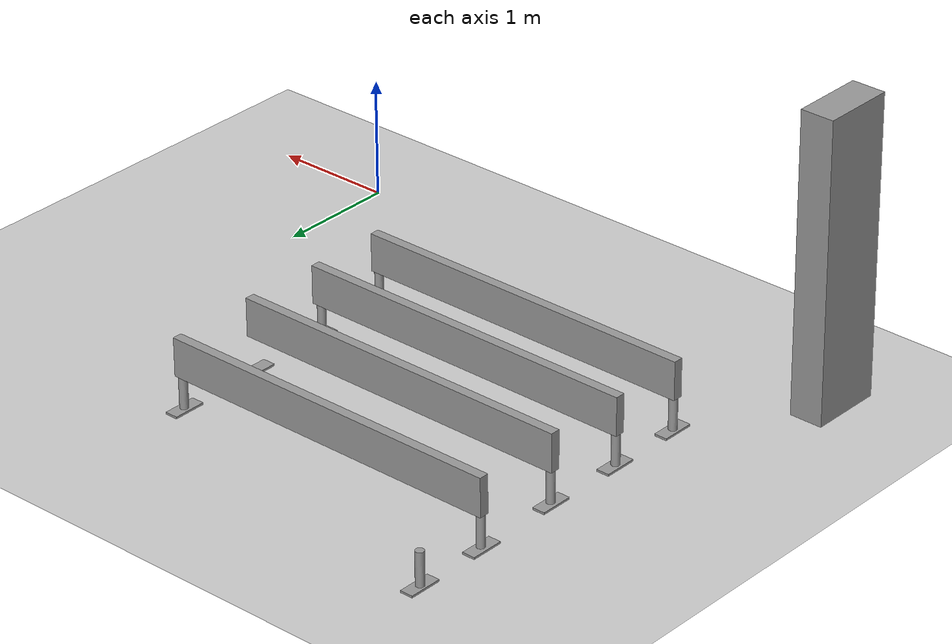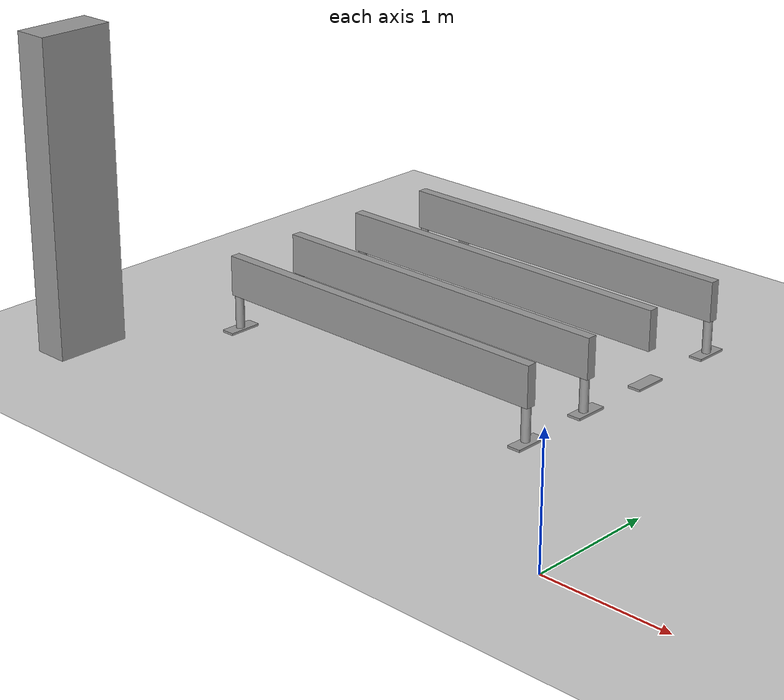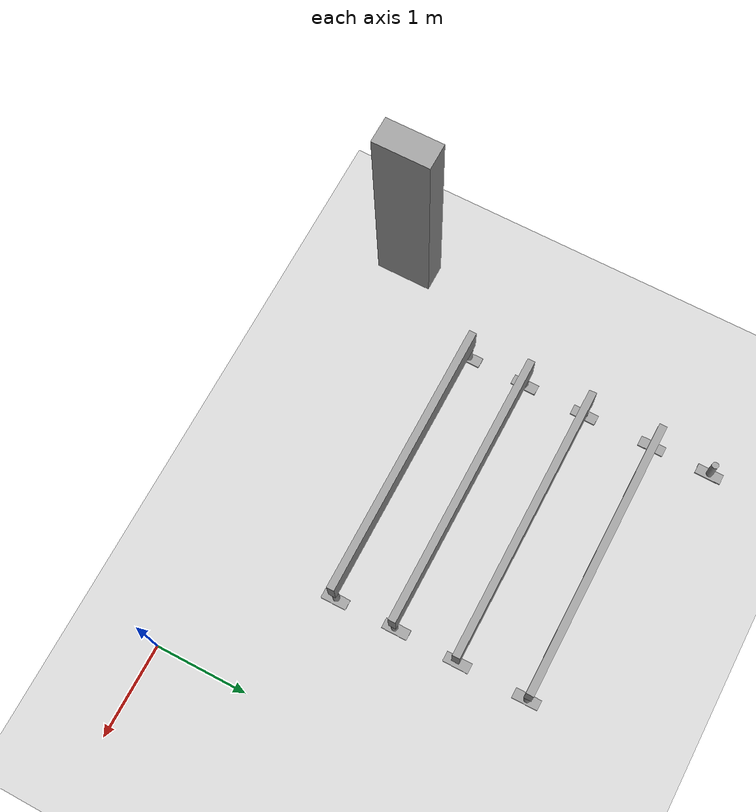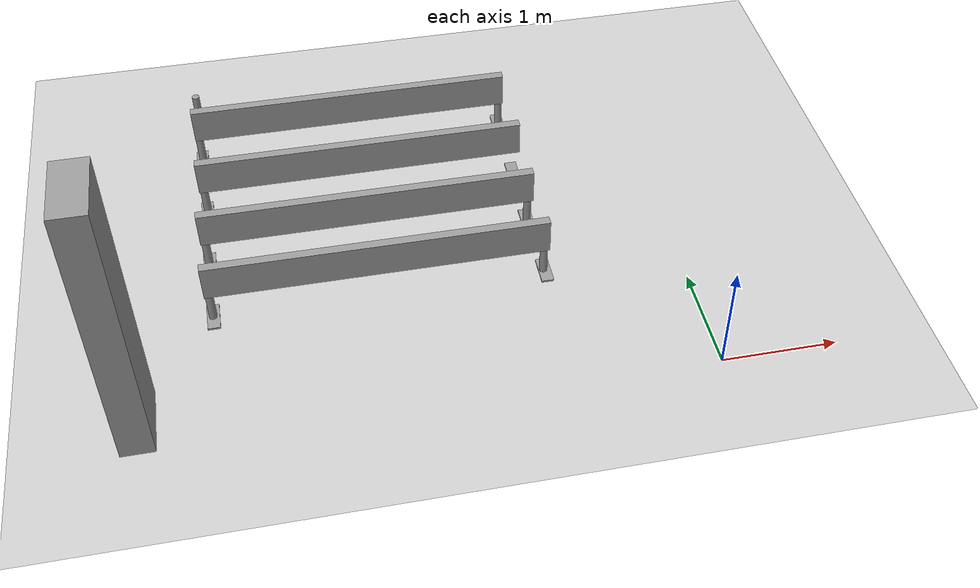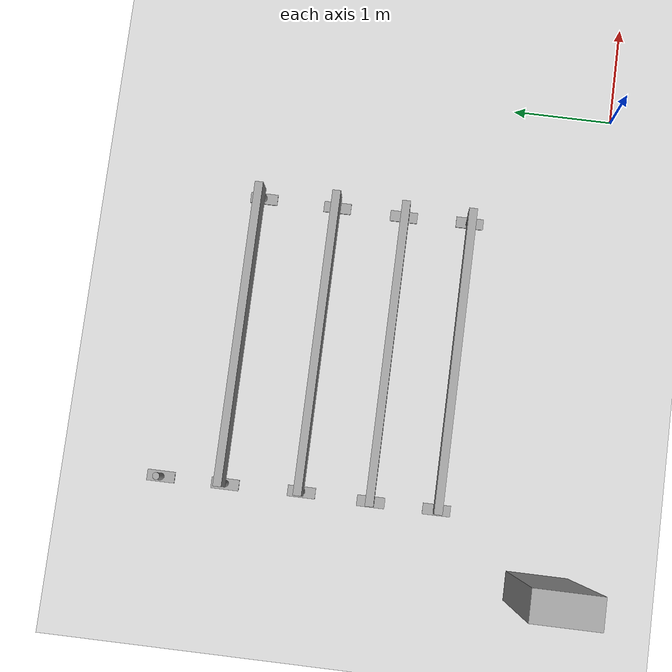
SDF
<sdf version="1.6">
 <world name="default">
  <model name="ground_plane">
   <static>1</static>
   <link name="link">
    <collision name="collision">
     <geometry><plane><normal>0 0 1</normal><size>100 100</size></plane></geometry>
     <surface><friction><ode><mu>100</mu><mu2>50</mu2></ode></friction></surface>
    </collision>
    <visual name="visual">
     <cast_shadows>0</cast_shadows>
     <geometry><plane><normal>0 0 1</normal><size>100 100</size></plane></geometry>
     <material>
      <script><uri>file://media/materials/scripts/gazebo.material</uri><name>Gazebo/Grey</name></script>
     </material>
    </visual>
   </link>
  </model>
  <model name="banchi">
   <link name="link_0_clone_18">
    <inertial>
     <mass>0.000785881</mass>
     <inertia>
      <ixx>5.11476e-06</ixx>
      <ixy>0</ixy>
      <ixz>0</ixz>
      <iyy>8.37345e-07</iyy>
      <iyz>0</iyz>
      <izz>5.8658e-06</izz>
     </inertia>
    </inertial>
    <pose>-1.73682 -5.78102 -0.495327 0 -0 0</pose>
    <visual name="visual">
     <geometry><box><size>0.110122 0.278282 0.025669</size></box></geometry>
     <material>
      <lighting>1</lighting>
      <script><uri>file://media/materials/scripts/gazebo.material</uri><name>Gazebo/Grey</name></script>
      <shader type="pixel"/>
     </material>
    </visual>
    <collision name="collision">
     <geometry><box><size>0.110122 0.278282 0.025669</size></box></geometry>
     <surface>
      <friction>
       <ode><mu>1</mu><mu2>1</mu2><fdir1>0 0 0</fdir1><slip1>0</slip1><slip2>0</slip2></ode>
       <torsional>
        <coefficient>1</coefficient>
        <patch_radius>0</patch_radius>
        <surface_radius>0</surface_radius>
        <use_patch_radius>1</use_patch_radius>
        <ode><slip>0</slip></ode>
       </torsional>
      </friction>
      <bounce><restitution_coefficient>0</restitution_coefficient><threshold>1e+06</threshold></bounce>
      <contact>
       <collide_without_contact>0</collide_without_contact>
       <collide_without_contact_bitmask>1</collide_without_contact_bitmask>
       <collide_bitmask>1</collide_bitmask>
       <ode>
        <soft_cfm>0</soft_cfm>
        <soft_erp>0.2</soft_erp>
        <kp>1e+13</kp>
        <kd>1</kd>
        <max_vel>0.01</max_vel>
        <min_depth>0</min_depth>
       </ode>
       <bullet>
        <split_impulse>1</split_impulse>
        <split_impulse_penetration_threshold>-0.01</split_impulse_penetration_threshold>
        <soft_cfm>0</soft_cfm>
        <soft_erp>0.2</soft_erp>
        <kp>1e+13</kp>
        <kd>1</kd>
       </bullet>
      </contact>
     </surface>
    </collision>
   </link>
   <link name="link_0_clone_19">
    <inertial>
     <mass>0.000785881</mass>
     <inertia>
      <ixx>5.11476e-06</ixx>
      <ixy>0</ixy>
      <ixz>0</ixz>
      <iyy>8.37345e-07</iyy>
      <iyz>0</iyz>
      <izz>5.8658e-06</izz>
     </inertia>
    </inertial>
    <pose>-1.74049 -6.54069 -0.495327 0 -0 0</pose>
    <visual name="visual">
     <geometry><box><size>0.110122 0.278282 0.025669</size></box></geometry>
     <material>
      <lighting>1</lighting>
      <script><uri>file://media/materials/scripts/gazebo.material</uri><name>Gazebo/Grey</name></script>
      <shader type="pixel"/>
     </material>
    </visual>
    <collision name="collision">
     <geometry><box><size>0.110122 0.278282 0.025669</size></box></geometry>
     <surface>
      <friction>
       <ode><mu>1</mu><mu2>1</mu2><fdir1>0 0 0</fdir1><slip1>0</slip1><slip2>0</slip2></ode>
       <torsional>
        <coefficient>1</coefficient>
        <patch_radius>0</patch_radius>
        <surface_radius>0</surface_radius>
        <use_patch_radius>1</use_patch_radius>
        <ode><slip>0</slip></ode>
       </torsional>
      </friction>
      <bounce><restitution_coefficient>0</restitution_coefficient><threshold>1e+06</threshold></bounce>
      <contact>
       <collide_without_contact>0</collide_without_contact>
       <collide_without_contact_bitmask>1</collide_without_contact_bitmask>
       <collide_bitmask>1</collide_bitmask>
       <ode>
        <soft_cfm>0</soft_cfm>
        <soft_erp>0.2</soft_erp>
        <kp>1e+13</kp>
        <kd>1</kd>
        <max_vel>0.01</max_vel>
        <min_depth>0</min_depth>
       </ode>
       <bullet>
        <split_impulse>1</split_impulse>
        <split_impulse_penetration_threshold>-0.01</split_impulse_penetration_threshold>
        <soft_cfm>0</soft_cfm>
        <soft_erp>0.2</soft_erp>
        <kp>1e+13</kp>
        <kd>1</kd>
       </bullet>
      </contact>
     </surface>
    </collision>
   </link>
   <link name="link_0_clone_20">
    <inertial>
     <mass>0.000785881</mass>
     <inertia>
      <ixx>5.11476e-06</ixx>
      <ixy>0</ixy>
      <ixz>0</ixz>
      <iyy>8.37345e-07</iyy>
      <iyz>0</iyz>
      <izz>5.8658e-06</izz>
     </inertia>
    </inertial>
    <pose>-1.75164 -7.22714 -0.495327 0 -0 0</pose>
    <visual name="visual">
     <geometry><box><size>0.110122 0.278282 0.025669</size></box></geometry>
     <material>
      <lighting>1</lighting>
      <script><uri>file://media/materials/scripts/gazebo.material</uri><name>Gazebo/Grey</name></script>
      <shader type="pixel"/>
     </material>
    </visual>
    <collision name="collision">
     <geometry><box><size>0.110122 0.278282 0.025669</size></box></geometry>
     <surface>
      <friction>
       <ode><mu>1</mu><mu2>1</mu2><fdir1>0 0 0</fdir1><slip1>0</slip1><slip2>0</slip2></ode>
       <torsional>
        <coefficient>1</coefficient>
        <patch_radius>0</patch_radius>
        <surface_radius>0</surface_radius>
        <use_patch_radius>1</use_patch_radius>
        <ode><slip>0</slip></ode>
       </torsional>
      </friction>
      <bounce><restitution_coefficient>0</restitution_coefficient><threshold>1e+06</threshold></bounce>
      <contact>
       <collide_without_contact>0</collide_without_contact>
       <collide_without_contact_bitmask>1</collide_without_contact_bitmask>
       <collide_bitmask>1</collide_bitmask>
       <ode>
        <soft_cfm>0</soft_cfm>
        <soft_erp>0.2</soft_erp>
        <kp>1e+13</kp>
        <kd>1</kd>
        <max_vel>0.01</max_vel>
        <min_depth>0</min_depth>
       </ode>
       <bullet>
        <split_impulse>1</split_impulse>
        <split_impulse_penetration_threshold>-0.01</split_impulse_penetration_threshold>
        <soft_cfm>0</soft_cfm>
        <soft_erp>0.2</soft_erp>
        <kp>1e+13</kp>
        <kd>1</kd>
       </bullet>
      </contact>
     </surface>
    </collision>
   </link>
   <link name="link_0_clone_21">
    <inertial>
     <mass>0.000785881</mass>
     <inertia>
      <ixx>5.11476e-06</ixx>
      <ixy>0</ixy>
      <ixz>0</ixz>
      <iyy>8.37345e-07</iyy>
      <iyz>0</iyz>
      <izz>5.8658e-06</izz>
     </inertia>
    </inertial>
    <pose>-1.73677 -7.90508 -0.495327 0 -0 0</pose>
    <visual name="visual">
     <geometry><box><size>0.110122 0.278282 0.025669</size></box></geometry>
     <material>
      <lighting>1</lighting>
      <script><uri>file://media/materials/scripts/gazebo.material</uri><name>Gazebo/Grey</name></script>
      <shader type="pixel"/>
     </material>
    </visual>
    <collision name="collision">
     <geometry><box><size>0.110122 0.278282 0.025669</size></box></geometry>
     <surface>
      <friction>
       <ode><mu>1</mu><mu2>1</mu2><fdir1>0 0 0</fdir1><slip1>0</slip1><slip2>0</slip2></ode>
       <torsional>
        <coefficient>1</coefficient>
        <patch_radius>0</patch_radius>
        <surface_radius>0</surface_radius>
        <use_patch_radius>1</use_patch_radius>
        <ode><slip>0</slip></ode>
       </torsional>
      </friction>
      <bounce><restitution_coefficient>0</restitution_coefficient><threshold>1e+06</threshold></bounce>
      <contact>
       <collide_without_contact>0</collide_without_contact>
       <collide_without_contact_bitmask>1</collide_without_contact_bitmask>
       <collide_bitmask>1</collide_bitmask>
       <ode>
        <soft_cfm>0</soft_cfm>
        <soft_erp>0.2</soft_erp>
        <kp>1e+13</kp>
        <kd>1</kd>
        <max_vel>0.01</max_vel>
        <min_depth>0</min_depth>
       </ode>
       <bullet>
        <split_impulse>1</split_impulse>
        <split_impulse_penetration_threshold>-0.01</split_impulse_penetration_threshold>
        <soft_cfm>0</soft_cfm>
        <soft_erp>0.2</soft_erp>
        <kp>1e+13</kp>
        <kd>1</kd>
       </bullet>
      </contact>
     </surface>
    </collision>
   </link>
   <link name="link_0_clone_22">
    <inertial>
     <mass>0.000785881</mass>
     <inertia>
      <ixx>5.11476e-06</ixx>
      <ixy>0</ixy>
      <ixz>0</ixz>
      <iyy>8.37345e-07</iyy>
      <iyz>0</iyz>
      <izz>5.8658e-06</izz>
     </inertia>
    </inertial>
    <pose>-4.66294 -7.90517 -0.495327 0 -0 0</pose>
    <visual name="visual">
     <geometry><box><size>0.110122 0.278282 0.025669</size></box></geometry>
     <material>
      <lighting>1</lighting>
      <script><uri>file://media/materials/scripts/gazebo.material</uri><name>Gazebo/Grey</name></script>
      <shader type="pixel"/>
     </material>
    </visual>
    <collision name="collision">
     <geometry><box><size>0.110122 0.278282 0.025669</size></box></geometry>
     <surface>
      <friction>
       <ode><mu>1</mu><mu2>1</mu2><fdir1>0 0 0</fdir1><slip1>0</slip1><slip2>0</slip2></ode>
       <torsional>
        <coefficient>1</coefficient>
        <patch_radius>0</patch_radius>
        <surface_radius>0</surface_radius>
        <use_patch_radius>1</use_patch_radius>
        <ode><slip>0</slip></ode>
       </torsional>
      </friction>
      <bounce><restitution_coefficient>0</restitution_coefficient><threshold>1e+06</threshold></bounce>
      <contact>
       <collide_without_contact>0</collide_without_contact>
       <collide_without_contact_bitmask>1</collide_without_contact_bitmask>
       <collide_bitmask>1</collide_bitmask>
       <ode>
        <soft_cfm>0</soft_cfm>
        <soft_erp>0.2</soft_erp>
        <kp>1e+13</kp>
        <kd>1</kd>
        <max_vel>0.01</max_vel>
        <min_depth>0</min_depth>
       </ode>
       <bullet>
        <split_impulse>1</split_impulse>
        <split_impulse_penetration_threshold>-0.01</split_impulse_penetration_threshold>
        <soft_cfm>0</soft_cfm>
        <soft_erp>0.2</soft_erp>
        <kp>1e+13</kp>
        <kd>1</kd>
       </bullet>
      </contact>
     </surface>
    </collision>
   </link>
   <link name="link_0_clone_23">
    <inertial>
     <mass>0.000785881</mass>
     <inertia>
      <ixx>5.11476e-06</ixx>
      <ixy>0</ixy>
      <ixz>0</ixz>
      <iyy>8.37345e-07</iyy>
      <iyz>0</iyz>
      <izz>5.8658e-06</izz>
     </inertia>
    </inertial>
    <pose>-4.66232 -7.24665 -0.495327 0 -0 0</pose>
    <visual name="visual">
     <geometry><box><size>0.110122 0.278282 0.025669</size></box></geometry>
     <material>
      <lighting>1</lighting>
      <script><uri>file://media/materials/scripts/gazebo.material</uri><name>Gazebo/Grey</name></script>
      <shader type="pixel"/>
     </material>
    </visual>
    <collision name="collision">
     <geometry><box><size>0.110122 0.278282 0.025669</size></box></geometry>
     <surface>
      <friction>
       <ode><mu>1</mu><mu2>1</mu2><fdir1>0 0 0</fdir1><slip1>0</slip1><slip2>0</slip2></ode>
       <torsional>
        <coefficient>1</coefficient>
        <patch_radius>0</patch_radius>
        <surface_radius>0</surface_radius>
        <use_patch_radius>1</use_patch_radius>
        <ode><slip>0</slip></ode>
       </torsional>
      </friction>
      <bounce><restitution_coefficient>0</restitution_coefficient><threshold>1e+06</threshold></bounce>
      <contact>
       <collide_without_contact>0</collide_without_contact>
       <collide_without_contact_bitmask>1</collide_without_contact_bitmask>
       <collide_bitmask>1</collide_bitmask>
       <ode>
        <soft_cfm>0</soft_cfm>
        <soft_erp>0.2</soft_erp>
        <kp>1e+13</kp>
        <kd>1</kd>
        <max_vel>0.01</max_vel>
        <min_depth>0</min_depth>
       </ode>
       <bullet>
        <split_impulse>1</split_impulse>
        <split_impulse_penetration_threshold>-0.01</split_impulse_penetration_threshold>
        <soft_cfm>0</soft_cfm>
        <soft_erp>0.2</soft_erp>
        <kp>1e+13</kp>
        <kd>1</kd>
       </bullet>
      </contact>
     </surface>
    </collision>
   </link>
   <link name="link_0_clone_24">
    <inertial>
     <mass>0.000785881</mass>
     <inertia>
      <ixx>5.11476e-06</ixx>
      <ixy>0</ixy>
      <ixz>0</ixz>
      <iyy>8.37345e-07</iyy>
      <iyz>0</iyz>
      <izz>5.8658e-06</izz>
     </inertia>
    </inertial>
    <pose>-4.64989 -6.54884 -0.495327 0 -0 0</pose>
    <visual name="visual">
     <geometry><box><size>0.110122 0.278282 0.025669</size></box></geometry>
     <material>
      <lighting>1</lighting>
      <script><uri>file://media/materials/scripts/gazebo.material</uri><name>Gazebo/Grey</name></script>
      <shader type="pixel"/>
     </material>
    </visual>
    <collision name="collision">
     <geometry><box><size>0.110122 0.278282 0.025669</size></box></geometry>
     <surface>
      <friction>
       <ode><mu>1</mu><mu2>1</mu2><fdir1>0 0 0</fdir1><slip1>0</slip1><slip2>0</slip2></ode>
       <torsional>
        <coefficient>1</coefficient>
        <patch_radius>0</patch_radius>
        <surface_radius>0</surface_radius>
        <use_patch_radius>1</use_patch_radius>
        <ode><slip>0</slip></ode>
       </torsional>
      </friction>
      <bounce><restitution_coefficient>0</restitution_coefficient><threshold>1e+06</threshold></bounce>
      <contact>
       <collide_without_contact>0</collide_without_contact>
       <collide_without_contact_bitmask>1</collide_without_contact_bitmask>
       <collide_bitmask>1</collide_bitmask>
       <ode>
        <soft_cfm>0</soft_cfm>
        <soft_erp>0.2</soft_erp>
        <kp>1e+13</kp>
        <kd>1</kd>
        <max_vel>0.01</max_vel>
        <min_depth>0</min_depth>
       </ode>
       <bullet>
        <split_impulse>1</split_impulse>
        <split_impulse_penetration_threshold>-0.01</split_impulse_penetration_threshold>
        <soft_cfm>0</soft_cfm>
        <soft_erp>0.2</soft_erp>
        <kp>1e+13</kp>
        <kd>1</kd>
       </bullet>
      </contact>
     </surface>
    </collision>
   </link>
   <link name="link_0_clone_25">
    <inertial>
     <mass>0.000785881</mass>
     <inertia>
      <ixx>5.11476e-06</ixx>
      <ixy>0</ixy>
      <ixz>0</ixz>
      <iyy>8.37345e-07</iyy>
      <iyz>0</iyz>
      <izz>5.8658e-06</izz>
     </inertia>
    </inertial>
    <pose>-4.66372 -5.78274 -0.495327 0 -0 0</pose>
    <visual name="visual">
     <geometry><box><size>0.110122 0.278282 0.025669</size></box></geometry>
     <material>
      <lighting>1</lighting>
      <script><uri>file://media/materials/scripts/gazebo.material</uri><name>Gazebo/Grey</name></script>
      <shader type="pixel"/>
     </material>
    </visual>
    <collision name="collision">
     <geometry><box><size>0.110122 0.278282 0.025669</size></box></geometry>
     <surface>
      <friction>
       <ode><mu>1</mu><mu2>1</mu2><fdir1>0 0 0</fdir1><slip1>0</slip1><slip2>0</slip2></ode>
       <torsional>
        <coefficient>1</coefficient>
        <patch_radius>0</patch_radius>
        <surface_radius>0</surface_radius>
        <use_patch_radius>1</use_patch_radius>
        <ode><slip>0</slip></ode>
       </torsional>
      </friction>
      <bounce><restitution_coefficient>0</restitution_coefficient><threshold>1e+06</threshold></bounce>
      <contact>
       <collide_without_contact>0</collide_without_contact>
       <collide_without_contact_bitmask>1</collide_without_contact_bitmask>
       <collide_bitmask>1</collide_bitmask>
       <ode>
        <soft_cfm>0</soft_cfm>
        <soft_erp>0.2</soft_erp>
        <kp>1e+13</kp>
        <kd>1</kd>
        <max_vel>0.01</max_vel>
        <min_depth>0</min_depth>
       </ode>
       <bullet>
        <split_impulse>1</split_impulse>
        <split_impulse_penetration_threshold>-0.01</split_impulse_penetration_threshold>
        <soft_cfm>0</soft_cfm>
        <soft_erp>0.2</soft_erp>
        <kp>1e+13</kp>
        <kd>1</kd>
       </bullet>
      </contact>
     </surface>
    </collision>
   </link>
   <link name="link_0_clone_26">
    <inertial>
     <mass>0.000785881</mass>
     <inertia>
      <ixx>5.11476e-06</ixx>
      <ixy>0</ixy>
      <ixz>0</ixz>
      <iyy>8.37345e-07</iyy>
      <iyz>0</iyz>
      <izz>5.8658e-06</izz>
     </inertia>
    </inertial>
    <pose>-4.66408 -5.13633 -0.495327 0 -0 0</pose>
    <visual name="visual">
     <geometry><box><size>0.110122 0.278282 0.025669</size></box></geometry>
     <material>
      <lighting>1</lighting>
      <script><uri>file://media/materials/scripts/gazebo.material</uri><name>Gazebo/Grey</name></script>
      <shader type="pixel"/>
     </material>
    </visual>
    <collision name="collision">
     <geometry><box><size>0.110122 0.278282 0.025669</size></box></geometry>
     <surface>
      <friction>
       <ode><mu>1</mu><mu2>1</mu2><fdir1>0 0 0</fdir1><slip1>0</slip1><slip2>0</slip2></ode>
       <torsional>
        <coefficient>1</coefficient>
        <patch_radius>0</patch_radius>
        <surface_radius>0</surface_radius>
        <use_patch_radius>1</use_patch_radius>
        <ode><slip>0</slip></ode>
       </torsional>
      </friction>
      <bounce><restitution_coefficient>0</restitution_coefficient><threshold>1e+06</threshold></bounce>
      <contact>
       <collide_without_contact>0</collide_without_contact>
       <collide_without_contact_bitmask>1</collide_without_contact_bitmask>
       <collide_bitmask>1</collide_bitmask>
       <ode>
        <soft_cfm>0</soft_cfm>
        <soft_erp>0.2</soft_erp>
        <kp>1e+13</kp>
        <kd>1</kd>
        <max_vel>0.01</max_vel>
        <min_depth>0</min_depth>
       </ode>
       <bullet>
        <split_impulse>1</split_impulse>
        <split_impulse_penetration_threshold>-0.01</split_impulse_penetration_threshold>
        <soft_cfm>0</soft_cfm>
        <soft_erp>0.2</soft_erp>
        <kp>1e+13</kp>
        <kd>1</kd>
       </bullet>
      </contact>
     </surface>
    </collision>
   </link>
   <link name="link_4">
    <pose>-5.31479 -8.96277 0.64457 0 -0 0</pose>
    <inertial>
     <mass>2.75337</mass>
     <inertia><ixx>1.96891</ixx><ixy>0</ixy><ixz>0</ixz><iyy>1.96891</iyy><iyz>0</iyz><izz>0.458897</izz></inertia>
    </inertial>
    <visual name="visual">
     <geometry><box><size>0.285 0.61 2.75337</size></box></geometry>
     <material>
      <lighting>1</lighting>
      <script><uri>file://media/materials/scripts/gazebo.material</uri><name>Gazebo/Grey</name></script>
      <ambient>0.3 0.3 0.3 1</ambient>
      <diffuse>0.7 0.7 0.7 1</diffuse>
      <specular>0.01 0.01 0.01 1</specular>
      <emissive>0 0 0 1</emissive>
      <shader type="vertex"><normal_map>__default__</normal_map></shader>
     </material>
    </visual>
    <collision name="collision">
     <geometry><box><size>0.285 0.61 2.75337</size></box></geometry>
     <surface>
      <friction>
       <ode><mu>1</mu><mu2>1</mu2><fdir1>0 0 0</fdir1><slip1>0</slip1><slip2>0</slip2></ode>
       <torsional>
        <coefficient>1</coefficient>
        <patch_radius>0</patch_radius>
        <surface_radius>0</surface_radius>
        <use_patch_radius>1</use_patch_radius>
        <ode><slip>0</slip></ode>
       </torsional>
      </friction>
      <bounce><restitution_coefficient>0</restitution_coefficient><threshold>1e+06</threshold></bounce>
      <contact>
       <collide_without_contact>0</collide_without_contact>
       <collide_without_contact_bitmask>1</collide_without_contact_bitmask>
       <collide_bitmask>1</collide_bitmask>
       <ode>
        <soft_cfm>0</soft_cfm>
        <soft_erp>0.2</soft_erp>
        <kp>1e+13</kp>
        <kd>1</kd>
        <max_vel>0.01</max_vel>
        <min_depth>0</min_depth>
       </ode>
       <bullet>
        <split_impulse>1</split_impulse>
        <split_impulse_penetration_threshold>-0.01</split_impulse_penetration_threshold>
        <soft_cfm>0</soft_cfm>
        <soft_erp>0.2</soft_erp>
        <kp>1e+13</kp>
        <kd>1</kd>
       </bullet>
      </contact>
     </surface>
    </collision>
   </link>
   <link name="link_6_clone_clone_4_clone_1">
    <pose>-3.1939 -5.77823 -0.050035 0 -0 0</pose>
    <inertial>
     <mass>0.0822689</mass>
     <inertia>
      <ixx>0.00690216</ixx>
      <ixy>0</ixy>
      <ixz>0</ixz>
      <iyy>0.0137115</iyy>
      <iyz>0</iyz>
      <izz>0.00690216</izz>
     </inertia>
    </inertial>
    <visual name="visual">
     <geometry><box><size>3 0.082269 0.32559</size></box></geometry>
     <material>
      <lighting>1</lighting>
      <script><uri>file://media/materials/scripts/gazebo.material</uri><name>Gazebo/Grey</name></script>
      <ambient>0.3 0.3 0.3 1</ambient>
      <diffuse>0.7 0.7 0.7 1</diffuse>
      <specular>0.01 0.01 0.01 1</specular>
      <emissive>0 0 0 1</emissive>
      <shader type="vertex"><normal_map>__default__</normal_map></shader>
     </material>
    </visual>
    <collision name="collision">
     <geometry><box><size>3 0.082269 0.32559</size></box></geometry>
     <surface>
      <friction>
       <ode><mu>1</mu><mu2>1</mu2><fdir1>0 0 0</fdir1><slip1>0</slip1><slip2>0</slip2></ode>
       <torsional>
        <coefficient>1</coefficient>
        <patch_radius>0</patch_radius>
        <surface_radius>0</surface_radius>
        <use_patch_radius>1</use_patch_radius>
        <ode><slip>0</slip></ode>
       </torsional>
      </friction>
      <bounce><restitution_coefficient>0</restitution_coefficient><threshold>1e+06</threshold></bounce>
      <contact>
       <collide_without_contact>0</collide_without_contact>
       <collide_without_contact_bitmask>1</collide_without_contact_bitmask>
       <collide_bitmask>1</collide_bitmask>
       <ode>
        <soft_cfm>0</soft_cfm>
        <soft_erp>0.2</soft_erp>
        <kp>1e+13</kp>
        <kd>1</kd>
        <max_vel>0.01</max_vel>
        <min_depth>0</min_depth>
       </ode>
       <bullet>
        <split_impulse>1</split_impulse>
        <split_impulse_penetration_threshold>-0.01</split_impulse_penetration_threshold>
        <soft_cfm>0</soft_cfm>
        <soft_erp>0.2</soft_erp>
        <kp>1e+13</kp>
        <kd>1</kd>
       </bullet>
      </contact>
     </surface>
    </collision>
   </link>
   <link name="link_6_clone_clone_4_clone_2">
    <pose>-3.18814 -6.54898 -0.044202 0 -0 0</pose>
    <inertial>
     <mass>0.0822689</mass>
     <inertia>
      <ixx>0.00690216</ixx>
      <ixy>0</ixy>
      <ixz>0</ixz>
      <iyy>0.0137115</iyy>
      <iyz>0</iyz>
      <izz>0.00690216</izz>
     </inertia>
    </inertial>
    <visual name="visual">
     <geometry><box><size>3 0.082269 0.32559</size></box></geometry>
     <material>
      <lighting>1</lighting>
      <script><uri>file://media/materials/scripts/gazebo.material</uri><name>Gazebo/Grey</name></script>
      <ambient>0.3 0.3 0.3 1</ambient>
      <diffuse>0.7 0.7 0.7 1</diffuse>
      <specular>0.01 0.01 0.01 1</specular>
      <emissive>0 0 0 1</emissive>
      <shader type="vertex"><normal_map>__default__</normal_map></shader>
     </material>
    </visual>
    <collision name="collision">
     <geometry><box><size>3 0.082269 0.32559</size></box></geometry>
     <surface>
      <friction>
       <ode><mu>1</mu><mu2>1</mu2><fdir1>0 0 0</fdir1><slip1>0</slip1><slip2>0</slip2></ode>
       <torsional>
        <coefficient>1</coefficient>
        <patch_radius>0</patch_radius>
        <surface_radius>0</surface_radius>
        <use_patch_radius>1</use_patch_radius>
        <ode><slip>0</slip></ode>
       </torsional>
      </friction>
      <bounce><restitution_coefficient>0</restitution_coefficient><threshold>1e+06</threshold></bounce>
      <contact>
       <collide_without_contact>0</collide_without_contact>
       <collide_without_contact_bitmask>1</collide_without_contact_bitmask>
       <collide_bitmask>1</collide_bitmask>
       <ode>
        <soft_cfm>0</soft_cfm>
        <soft_erp>0.2</soft_erp>
        <kp>1e+13</kp>
        <kd>1</kd>
        <max_vel>0.01</max_vel>
        <min_depth>0</min_depth>
       </ode>
       <bullet>
        <split_impulse>1</split_impulse>
        <split_impulse_penetration_threshold>-0.01</split_impulse_penetration_threshold>
        <soft_cfm>0</soft_cfm>
        <soft_erp>0.2</soft_erp>
        <kp>1e+13</kp>
        <kd>1</kd>
       </bullet>
      </contact>
     </surface>
    </collision>
   </link>
   <link name="link_6_clone_clone_4_clone_3">
    <pose>-3.20665 -7.24405 -0.050379 0 -0 0</pose>
    <inertial>
     <mass>0.0822689</mass>
     <inertia>
      <ixx>0.00690216</ixx>
      <ixy>0</ixy>
      <ixz>0</ixz>
      <iyy>0.0137115</iyy>
      <iyz>0</iyz>
      <izz>0.00690216</izz>
     </inertia>
    </inertial>
    <visual name="visual">
     <geometry><box><size>3 0.082269 0.32559</size></box></geometry>
     <material>
      <lighting>1</lighting>
      <script><uri>file://media/materials/scripts/gazebo.material</uri><name>Gazebo/Grey</name></script>
      <ambient>0.3 0.3 0.3 1</ambient>
      <diffuse>0.7 0.7 0.7 1</diffuse>
      <specular>0.01 0.01 0.01 1</specular>
      <emissive>0 0 0 1</emissive>
      <shader type="vertex"><normal_map>__default__</normal_map></shader>
     </material>
    </visual>
    <collision name="collision">
     <geometry><box><size>3 0.082269 0.32559</size></box></geometry>
     <surface>
      <friction>
       <ode><mu>1</mu><mu2>1</mu2><fdir1>0 0 0</fdir1><slip1>0</slip1><slip2>0</slip2></ode>
       <torsional>
        <coefficient>1</coefficient>
        <patch_radius>0</patch_radius>
        <surface_radius>0</surface_radius>
        <use_patch_radius>1</use_patch_radius>
        <ode><slip>0</slip></ode>
       </torsional>
      </friction>
      <bounce><restitution_coefficient>0</restitution_coefficient><threshold>1e+06</threshold></bounce>
      <contact>
       <collide_without_contact>0</collide_without_contact>
       <collide_without_contact_bitmask>1</collide_without_contact_bitmask>
       <collide_bitmask>1</collide_bitmask>
       <ode>
        <soft_cfm>0</soft_cfm>
        <soft_erp>0.2</soft_erp>
        <kp>1e+13</kp>
        <kd>1</kd>
        <max_vel>0.01</max_vel>
        <min_depth>0</min_depth>
       </ode>
       <bullet>
        <split_impulse>1</split_impulse>
        <split_impulse_penetration_threshold>-0.01</split_impulse_penetration_threshold>
        <soft_cfm>0</soft_cfm>
        <soft_erp>0.2</soft_erp>
        <kp>1e+13</kp>
        <kd>1</kd>
       </bullet>
      </contact>
     </surface>
    </collision>
   </link>
   <link name="link_6_clone_clone_4_clone_4">
    <pose>-3.20427 -7.9071 -0.047663 0 -0 0</pose>
    <inertial>
     <mass>0.0297622</mass>
     <inertia>
      <ixx>0.00034139</ixx>
      <ixy>0</ixy>
      <ixz>0</ixz>
      <iyy>0.00280479</iyy>
      <iyz>0</iyz>
      <izz>0.00249698</izz>
     </inertia>
    </inertial>
    <visual name="visual">
     <geometry><box><size>3 0.082269 0.32559</size></box></geometry>
     <material>
      <lighting>1</lighting>
      <script><uri>file://media/materials/scripts/gazebo.material</uri><name>Gazebo/Grey</name></script>
      <ambient>0.3 0.3 0.3 1</ambient>
      <diffuse>0.7 0.7 0.7 1</diffuse>
      <specular>0.01 0.01 0.01 1</specular>
      <emissive>0 0 0 1</emissive>
      <shader type="vertex"><normal_map>__default__</normal_map></shader>
     </material>
    </visual>
    <collision name="collision">
     <geometry><box><size>3 0.082269 0.32559</size></box></geometry>
     <surface>
      <friction>
       <ode><mu>1</mu><mu2>1</mu2><fdir1>0 0 0</fdir1><slip1>0</slip1><slip2>0</slip2></ode>
       <torsional>
        <coefficient>1</coefficient>
        <patch_radius>0</patch_radius>
        <surface_radius>0</surface_radius>
        <use_patch_radius>1</use_patch_radius>
        <ode><slip>0</slip></ode>
       </torsional>
      </friction>
      <bounce><restitution_coefficient>0</restitution_coefficient><threshold>1e+06</threshold></bounce>
      <contact>
       <collide_without_contact>0</collide_without_contact>
       <collide_without_contact_bitmask>1</collide_without_contact_bitmask>
       <collide_bitmask>1</collide_bitmask>
       <ode>
        <soft_cfm>0</soft_cfm>
        <soft_erp>0.2</soft_erp>
        <kp>1e+13</kp>
        <kd>1</kd>
        <max_vel>0.01</max_vel>
        <min_depth>0</min_depth>
       </ode>
       <bullet>
        <split_impulse>1</split_impulse>
        <split_impulse_penetration_threshold>-0.01</split_impulse_penetration_threshold>
        <soft_cfm>0</soft_cfm>
        <soft_erp>0.2</soft_erp>
        <kp>1e+13</kp>
        <kd>1</kd>
       </bullet>
      </contact>
     </surface>
    </collision>
   </link>
   <link name="link_7">
    <pose>-1.74905 -7.90187 -0.350199 0 -0 0</pose>
    <inertial>
     <mass>0.00501927</mass>
     <inertia>
      <ixx>0.000419846</ixx>
      <ixy>0</ixy>
      <ixz>0</ixz>
      <iyy>0.000419846</iyy>
      <iyz>0</iyz>
      <izz>3.14914e-06</izz>
     </inertia>
    </inertial>
    <visual name="visual">
     <geometry><cylinder><radius>0.0354247</radius><length>0.3</length></cylinder></geometry>
     <material>
      <lighting>1</lighting>
      <script><uri>file://media/materials/scripts/gazebo.material</uri><name>Gazebo/Grey</name></script>
      <ambient>0.3 0.3 0.3 1</ambient>
      <diffuse>0.7 0.7 0.7 1</diffuse>
      <specular>0.01 0.01 0.01 1</specular>
      <emissive>0 0 0 1</emissive>
      <shader type="vertex"><normal_map>__default__</normal_map></shader>
     </material>
    </visual>
    <collision name="collision">
     <geometry><cylinder><radius>0.035425</radius><length>0.3</length></cylinder></geometry>
     <surface>
      <friction>
       <ode><mu>1</mu><mu2>1</mu2><fdir1>0 0 0</fdir1><slip1>0</slip1><slip2>0</slip2></ode>
       <torsional>
        <coefficient>1</coefficient>
        <patch_radius>0</patch_radius>
        <surface_radius>0</surface_radius>
        <use_patch_radius>1</use_patch_radius>
        <ode><slip>0</slip></ode>
       </torsional>
      </friction>
      <bounce><restitution_coefficient>0</restitution_coefficient><threshold>1e+06</threshold></bounce>
      <contact>
       <collide_without_contact>0</collide_without_contact>
       <collide_without_contact_bitmask>1</collide_without_contact_bitmask>
       <collide_bitmask>1</collide_bitmask>
       <ode>
        <soft_cfm>0</soft_cfm>
        <soft_erp>0.2</soft_erp>
        <kp>1e+13</kp>
        <kd>1</kd>
        <max_vel>0.01</max_vel>
        <min_depth>0</min_depth>
       </ode>
       <bullet>
        <split_impulse>1</split_impulse>
        <split_impulse_penetration_threshold>-0.01</split_impulse_penetration_threshold>
        <soft_cfm>0</soft_cfm>
        <soft_erp>0.2</soft_erp>
        <kp>1e+13</kp>
        <kd>1</kd>
       </bullet>
      </contact>
     </surface>
    </collision>
   </link>
   <link name="link_7_clone">
    <pose>-4.66394 -7.90686 -0.344432 0 -0 0</pose>
    <inertial>
     <mass>0.00501927</mass>
     <inertia>
      <ixx>0.000419846</ixx>
      <ixy>0</ixy>
      <ixz>0</ixz>
      <iyy>0.000419846</iyy>
      <iyz>0</iyz>
      <izz>3.14914e-06</izz>
     </inertia>
    </inertial>
    <visual name="visual">
     <geometry><cylinder><radius>0.0354247</radius><length>0.3</length></cylinder></geometry>
     <material>
      <lighting>1</lighting>
      <script><uri>file://media/materials/scripts/gazebo.material</uri><name>Gazebo/Grey</name></script>
      <ambient>0.3 0.3 0.3 1</ambient>
      <diffuse>0.7 0.7 0.7 1</diffuse>
      <specular>0.01 0.01 0.01 1</specular>
      <emissive>0 0 0 1</emissive>
      <shader type="vertex"><normal_map>__default__</normal_map></shader>
     </material>
    </visual>
    <collision name="collision">
     <geometry><cylinder><radius>0.035425</radius><length>0.3</length></cylinder></geometry>
     <surface>
      <friction>
       <ode><mu>1</mu><mu2>1</mu2><fdir1>0 0 0</fdir1><slip1>0</slip1><slip2>0</slip2></ode>
       <torsional>
        <coefficient>1</coefficient>
        <patch_radius>0</patch_radius>
        <surface_radius>0</surface_radius>
        <use_patch_radius>1</use_patch_radius>
        <ode><slip>0</slip></ode>
       </torsional>
      </friction>
      <bounce><restitution_coefficient>0</restitution_coefficient><threshold>1e+06</threshold></bounce>
      <contact>
       <collide_without_contact>0</collide_without_contact>
       <collide_without_contact_bitmask>1</collide_without_contact_bitmask>
       <collide_bitmask>1</collide_bitmask>
       <ode>
        <soft_cfm>0</soft_cfm>
        <soft_erp>0.2</soft_erp>
        <kp>1e+13</kp>
        <kd>1</kd>
        <max_vel>0.01</max_vel>
        <min_depth>0</min_depth>
       </ode>
       <bullet>
        <split_impulse>1</split_impulse>
        <split_impulse_penetration_threshold>-0.01</split_impulse_penetration_threshold>
        <soft_cfm>0</soft_cfm>
        <soft_erp>0.2</soft_erp>
        <kp>1e+13</kp>
        <kd>1</kd>
       </bullet>
      </contact>
     </surface>
    </collision>
   </link>
   <link name="link_7_clone_0">
    <pose>-1.75725 -7.24772 -0.354319 0 -0 0</pose>
    <inertial>
     <mass>0.00501927</mass>
     <inertia>
      <ixx>0.000419846</ixx>
      <ixy>0</ixy>
      <ixz>0</ixz>
      <iyy>0.000419846</iyy>
      <iyz>0</iyz>
      <izz>3.14914e-06</izz>
     </inertia>
    </inertial>
    <visual name="visual">
     <geometry><cylinder><radius>0.0354247</radius><length>0.3</length></cylinder></geometry>
     <material>
      <lighting>1</lighting>
      <script><uri>file://media/materials/scripts/gazebo.material</uri><name>Gazebo/Grey</name></script>
      <ambient>0.3 0.3 0.3 1</ambient>
      <diffuse>0.7 0.7 0.7 1</diffuse>
      <specular>0.01 0.01 0.01 1</specular>
      <emissive>0 0 0 1</emissive>
      <shader type="vertex"><normal_map>__default__</normal_map></shader>
     </material>
    </visual>
    <collision name="collision">
     <geometry><cylinder><radius>0.035425</radius><length>0.3</length></cylinder></geometry>
     <surface>
      <friction>
       <ode><mu>1</mu><mu2>1</mu2><fdir1>0 0 0</fdir1><slip1>0</slip1><slip2>0</slip2></ode>
       <torsional>
        <coefficient>1</coefficient>
        <patch_radius>0</patch_radius>
        <surface_radius>0</surface_radius>
        <use_patch_radius>1</use_patch_radius>
        <ode><slip>0</slip></ode>
       </torsional>
      </friction>
      <bounce><restitution_coefficient>0</restitution_coefficient><threshold>1e+06</threshold></bounce>
      <contact>
       <collide_without_contact>0</collide_without_contact>
       <collide_without_contact_bitmask>1</collide_without_contact_bitmask>
       <collide_bitmask>1</collide_bitmask>
       <ode>
        <soft_cfm>0</soft_cfm>
        <soft_erp>0.2</soft_erp>
        <kp>1e+13</kp>
        <kd>1</kd>
        <max_vel>0.01</max_vel>
        <min_depth>0</min_depth>
       </ode>
       <bullet>
        <split_impulse>1</split_impulse>
        <split_impulse_penetration_threshold>-0.01</split_impulse_penetration_threshold>
        <soft_cfm>0</soft_cfm>
        <soft_erp>0.2</soft_erp>
        <kp>1e+13</kp>
        <kd>1</kd>
       </bullet>
      </contact>
     </surface>
    </collision>
   </link>
   <link name="link_7_clone_1">
    <pose>-4.6651 -7.24899 -0.343212 0 -0 0</pose>
    <inertial>
     <mass>0.00501927</mass>
     <inertia>
      <ixx>0.000419846</ixx>
      <ixy>0</ixy>
      <ixz>0</ixz>
      <iyy>0.000419846</iyy>
      <iyz>0</iyz>
      <izz>3.14914e-06</izz>
     </inertia>
    </inertial>
    <visual name="visual">
     <geometry><cylinder><radius>0.0354247</radius><length>0.3</length></cylinder></geometry>
     <material>
      <lighting>1</lighting>
      <script><uri>file://media/materials/scripts/gazebo.material</uri><name>Gazebo/Grey</name></script>
      <ambient>0.3 0.3 0.3 1</ambient>
      <diffuse>0.7 0.7 0.7 1</diffuse>
      <specular>0.01 0.01 0.01 1</specular>
      <emissive>0 0 0 1</emissive>
      <shader type="vertex"><normal_map>__default__</normal_map></shader>
     </material>
    </visual>
    <collision name="collision">
     <geometry><cylinder><radius>0.035425</radius><length>0.3</length></cylinder></geometry>
     <surface>
      <friction>
       <ode><mu>1</mu><mu2>1</mu2><fdir1>0 0 0</fdir1><slip1>0</slip1><slip2>0</slip2></ode>
       <torsional>
        <coefficient>1</coefficient>
        <patch_radius>0</patch_radius>
        <surface_radius>0</surface_radius>
        <use_patch_radius>1</use_patch_radius>
        <ode><slip>0</slip></ode>
       </torsional>
      </friction>
      <bounce><restitution_coefficient>0</restitution_coefficient><threshold>1e+06</threshold></bounce>
      <contact>
       <collide_without_contact>0</collide_without_contact>
       <collide_without_contact_bitmask>1</collide_without_contact_bitmask>
       <collide_bitmask>1</collide_bitmask>
       <ode>
        <soft_cfm>0</soft_cfm>
        <soft_erp>0.2</soft_erp>
        <kp>1e+13</kp>
        <kd>1</kd>
        <max_vel>0.01</max_vel>
        <min_depth>0</min_depth>
       </ode>
       <bullet>
        <split_impulse>1</split_impulse>
        <split_impulse_penetration_threshold>-0.01</split_impulse_penetration_threshold>
        <soft_cfm>0</soft_cfm>
        <soft_erp>0.2</soft_erp>
        <kp>1e+13</kp>
        <kd>1</kd>
       </bullet>
      </contact>
     </surface>
    </collision>
   </link>
   <link name="link_7_clone_1_clone">
    <pose>-4.64537 -6.55011 -0.345478 0 -0 0</pose>
    <inertial>
     <mass>0.00501927</mass>
     <inertia>
      <ixx>0.000419846</ixx>
      <ixy>0</ixy>
      <ixz>0</ixz>
      <iyy>0.000419846</iyy>
      <iyz>0</iyz>
      <izz>3.14914e-06</izz>
     </inertia>
    </inertial>
    <visual name="visual">
     <geometry><cylinder><radius>0.0354247</radius><length>0.3</length></cylinder></geometry>
     <material>
      <lighting>1</lighting>
      <script><uri>file://media/materials/scripts/gazebo.material</uri><name>Gazebo/Grey</name></script>
      <ambient>0.3 0.3 0.3 1</ambient>
      <diffuse>0.7 0.7 0.7 1</diffuse>
      <specular>0.01 0.01 0.01 1</specular>
      <emissive>0 0 0 1</emissive>
      <shader type="vertex"><normal_map>__default__</normal_map></shader>
     </material>
    </visual>
    <collision name="collision">
     <geometry><cylinder><radius>0.035425</radius><length>0.3</length></cylinder></geometry>
     <surface>
      <friction>
       <ode><mu>1</mu><mu2>1</mu2><fdir1>0 0 0</fdir1><slip1>0</slip1><slip2>0</slip2></ode>
       <torsional>
        <coefficient>1</coefficient>
        <patch_radius>0</patch_radius>
        <surface_radius>0</surface_radius>
        <use_patch_radius>1</use_patch_radius>
        <ode><slip>0</slip></ode>
       </torsional>
      </friction>
      <bounce><restitution_coefficient>0</restitution_coefficient><threshold>1e+06</threshold></bounce>
      <contact>
       <collide_without_contact>0</collide_without_contact>
       <collide_without_contact_bitmask>1</collide_without_contact_bitmask>
       <collide_bitmask>1</collide_bitmask>
       <ode>
        <soft_cfm>0</soft_cfm>
        <soft_erp>0.2</soft_erp>
        <kp>1e+13</kp>
        <kd>1</kd>
        <max_vel>0.01</max_vel>
        <min_depth>0</min_depth>
       </ode>
       <bullet>
        <split_impulse>1</split_impulse>
        <split_impulse_penetration_threshold>-0.01</split_impulse_penetration_threshold>
        <soft_cfm>0</soft_cfm>
        <soft_erp>0.2</soft_erp>
        <kp>1e+13</kp>
        <kd>1</kd>
       </bullet>
      </contact>
     </surface>
    </collision>
   </link>
   <link name="link_7_clone_1_clone_clone">
    <pose>-4.65774 -5.78199 -0.348304 0 -0 0</pose>
    <inertial>
     <mass>0.00501927</mass>
     <inertia>
      <ixx>0.000419846</ixx>
      <ixy>0</ixy>
      <ixz>0</ixz>
      <iyy>0.000419846</iyy>
      <iyz>0</iyz>
      <izz>3.14914e-06</izz>
     </inertia>
    </inertial>
    <visual name="visual">
     <geometry><cylinder><radius>0.0354247</radius><length>0.3</length></cylinder></geometry>
     <material>
      <lighting>1</lighting>
      <script><uri>file://media/materials/scripts/gazebo.material</uri><name>Gazebo/Grey</name></script>
      <ambient>0.3 0.3 0.3 1</ambient>
      <diffuse>0.7 0.7 0.7 1</diffuse>
      <specular>0.01 0.01 0.01 1</specular>
      <emissive>0 0 0 1</emissive>
      <shader type="vertex"><normal_map>__default__</normal_map></shader>
     </material>
    </visual>
    <collision name="collision">
     <geometry><cylinder><radius>0.035425</radius><length>0.3</length></cylinder></geometry>
     <surface>
      <friction>
       <ode><mu>1</mu><mu2>1</mu2><fdir1>0 0 0</fdir1><slip1>0</slip1><slip2>0</slip2></ode>
       <torsional>
        <coefficient>1</coefficient>
        <patch_radius>0</patch_radius>
        <surface_radius>0</surface_radius>
        <use_patch_radius>1</use_patch_radius>
        <ode><slip>0</slip></ode>
       </torsional>
      </friction>
      <bounce><restitution_coefficient>0</restitution_coefficient><threshold>1e+06</threshold></bounce>
      <contact>
       <collide_without_contact>0</collide_without_contact>
       <collide_without_contact_bitmask>1</collide_without_contact_bitmask>
       <collide_bitmask>1</collide_bitmask>
       <ode>
        <soft_cfm>0</soft_cfm>
        <soft_erp>0.2</soft_erp>
        <kp>1e+13</kp>
        <kd>1</kd>
        <max_vel>0.01</max_vel>
        <min_depth>0</min_depth>
       </ode>
       <bullet>
        <split_impulse>1</split_impulse>
        <split_impulse_penetration_threshold>-0.01</split_impulse_penetration_threshold>
        <soft_cfm>0</soft_cfm>
        <soft_erp>0.2</soft_erp>
        <kp>1e+13</kp>
        <kd>1</kd>
       </bullet>
      </contact>
     </surface>
    </collision>
   </link>
   <link name="link_7_clone_1_clone_clone_clone">
    <pose>-1.73682 -5.77778 -0.348311 0 -0 0</pose>
    <inertial>
     <mass>0.00501927</mass>
     <inertia>
      <ixx>0.000419846</ixx>
      <ixy>0</ixy>
      <ixz>0</ixz>
      <iyy>0.000419846</iyy>
      <iyz>0</iyz>
      <izz>3.14914e-06</izz>
     </inertia>
    </inertial>
    <visual name="visual">
     <geometry><cylinder><radius>0.0354247</radius><length>0.3</length></cylinder></geometry>
     <material>
      <lighting>1</lighting>
      <script><uri>file://media/materials/scripts/gazebo.material</uri><name>Gazebo/Grey</name></script>
      <ambient>0.3 0.3 0.3 1</ambient>
      <diffuse>0.7 0.7 0.7 1</diffuse>
      <specular>0.01 0.01 0.01 1</specular>
      <emissive>0 0 0 1</emissive>
      <shader type="vertex"><normal_map>__default__</normal_map></shader>
     </material>
    </visual>
    <collision name="collision">
     <geometry><cylinder><radius>0.035425</radius><length>0.3</length></cylinder></geometry>
     <surface>
      <friction>
       <ode><mu>1</mu><mu2>1</mu2><fdir1>0 0 0</fdir1><slip1>0</slip1><slip2>0</slip2></ode>
       <torsional>
        <coefficient>1</coefficient>
        <patch_radius>0</patch_radius>
        <surface_radius>0</surface_radius>
        <use_patch_radius>1</use_patch_radius>
        <ode><slip>0</slip></ode>
       </torsional>
      </friction>
      <bounce><restitution_coefficient>0</restitution_coefficient><threshold>1e+06</threshold></bounce>
      <contact>
       <collide_without_contact>0</collide_without_contact>
       <collide_without_contact_bitmask>1</collide_without_contact_bitmask>
       <collide_bitmask>1</collide_bitmask>
       <ode>
        <soft_cfm>0</soft_cfm>
        <soft_erp>0.2</soft_erp>
        <kp>1e+13</kp>
        <kd>1</kd>
        <max_vel>0.01</max_vel>
        <min_depth>0</min_depth>
       </ode>
       <bullet>
        <split_impulse>1</split_impulse>
        <split_impulse_penetration_threshold>-0.01</split_impulse_penetration_threshold>
        <soft_cfm>0</soft_cfm>
        <soft_erp>0.2</soft_erp>
        <kp>1e+13</kp>
        <kd>1</kd>
       </bullet>
      </contact>
     </surface>
    </collision>
   </link>
   <link name="link_7_clone_2_clone_22">
    <pose>-4.66839 -5.13481 -0.346766 0 -0 0</pose>
    <inertial>
     <mass>0.00501927</mass>
     <inertia>
      <ixx>0.000419846</ixx>
      <ixy>0</ixy>
      <ixz>0</ixz>
      <iyy>0.000419846</iyy>
      <iyz>0</iyz>
      <izz>3.14914e-06</izz>
     </inertia>
    </inertial>
    <visual name="visual">
     <geometry><cylinder><radius>0.0354247</radius><length>0.3</length></cylinder></geometry>
     <material>
      <lighting>1</lighting>
      <script><uri>file://media/materials/scripts/gazebo.material</uri><name>Gazebo/Grey</name></script>
      <ambient>0.3 0.3 0.3 1</ambient>
      <diffuse>0.7 0.7 0.7 1</diffuse>
      <specular>0.01 0.01 0.01 1</specular>
      <emissive>0 0 0 1</emissive>
      <shader type="vertex"><normal_map>__default__</normal_map></shader>
     </material>
    </visual>
    <collision name="collision">
     <geometry><cylinder><radius>0.035425</radius><length>0.3</length></cylinder></geometry>
     <surface>
      <friction>
       <ode><mu>1</mu><mu2>1</mu2><fdir1>0 0 0</fdir1><slip1>0</slip1><slip2>0</slip2></ode>
       <torsional>
        <coefficient>1</coefficient>
        <patch_radius>0</patch_radius>
        <surface_radius>0</surface_radius>
        <use_patch_radius>1</use_patch_radius>
        <ode><slip>0</slip></ode>
       </torsional>
      </friction>
      <bounce><restitution_coefficient>0</restitution_coefficient><threshold>1e+06</threshold></bounce>
      <contact>
       <collide_without_contact>0</collide_without_contact>
       <collide_without_contact_bitmask>1</collide_without_contact_bitmask>
       <collide_bitmask>1</collide_bitmask>
       <ode>
        <soft_cfm>0</soft_cfm>
        <soft_erp>0.2</soft_erp>
        <kp>1e+13</kp>
        <kd>1</kd>
        <max_vel>0.01</max_vel>
        <min_depth>0</min_depth>
       </ode>
       <bullet>
        <split_impulse>1</split_impulse>
        <split_impulse_penetration_threshold>-0.01</split_impulse_penetration_threshold>
        <soft_cfm>0</soft_cfm>
        <soft_erp>0.2</soft_erp>
        <kp>1e+13</kp>
        <kd>1</kd>
       </bullet>
      </contact>
     </surface>
    </collision>
   </link>
   <static>1</static>
   <pose>0.510915 9.2351 0.494074 0 -0 0</pose>
  </model>
 </world>
</sdf>
